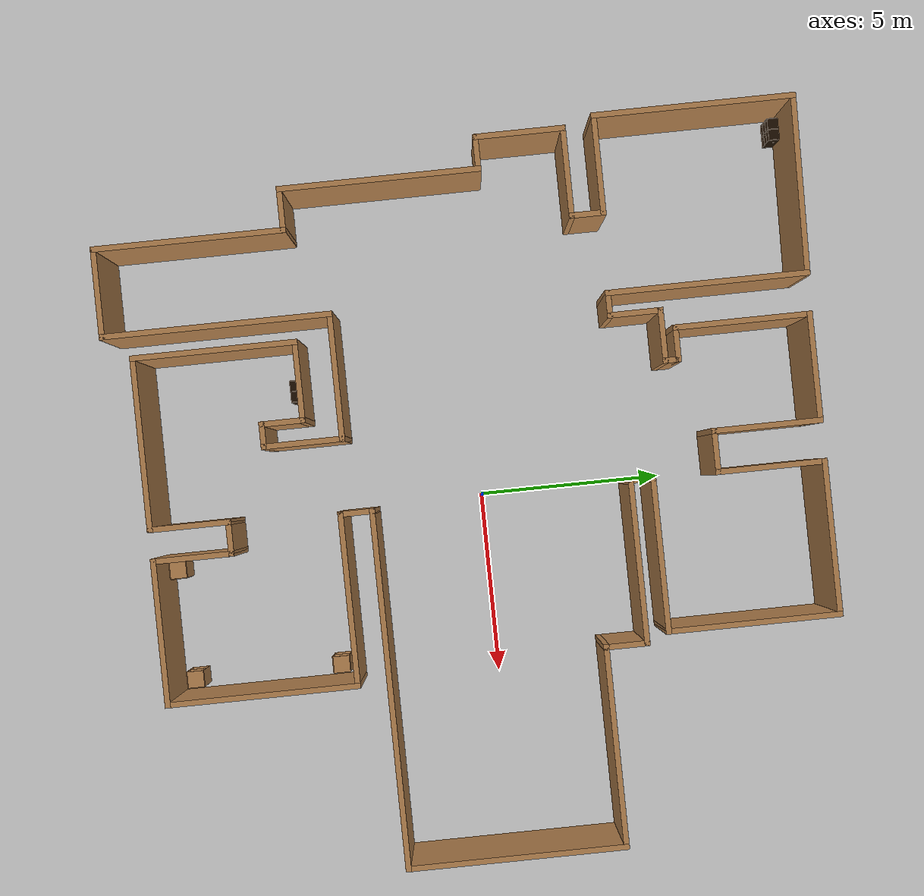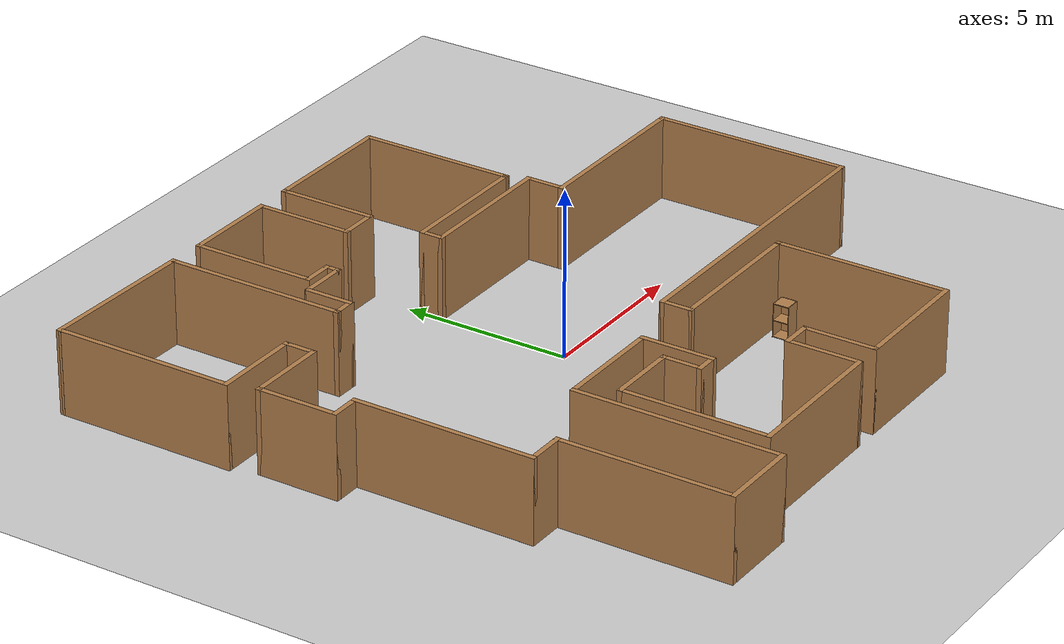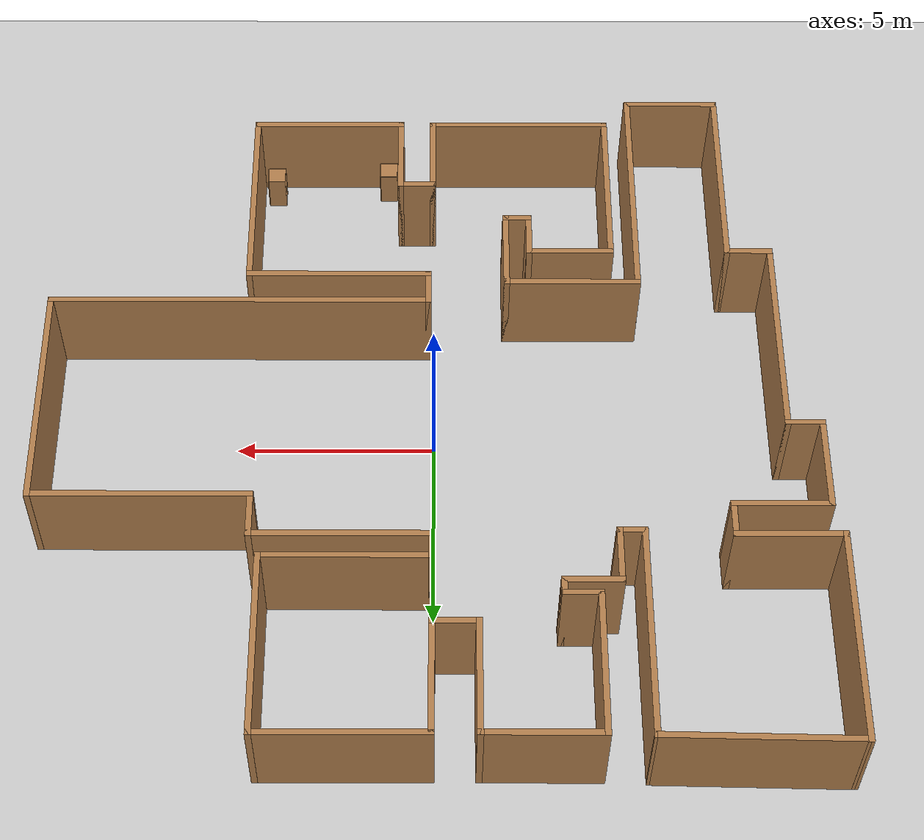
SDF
<sdf version="1.6">
 <world name="default">
  <light name="sun" type="directional">
   <pose>0 0 10 0 -0 0</pose>
   <diffuse>0.8 0.8 0.8 1</diffuse>
   <specular>0.2 0.2 0.2 1</specular>
   <attenuation>
    <range>1000</range>
    <constant>0.9</constant>
    <linear>0.01</linear>
    <quadratic>0.001</quadratic>
   </attenuation>
   <direction>-0.5 0.1 -0.9</direction>
  </light>
  <model name="ground_plane">
   <static>1</static>
   <link name="link">
    <collision name="collision">
     <geometry><plane><normal>0 0 1</normal><size>100 100</size></plane></geometry>
     <surface>
      <contact><collide_bitmask>65535</collide_bitmask></contact>
      <friction><ode><mu>100</mu><mu2>50</mu2></ode></friction>
     </surface>
    </collision>
    <visual name="visual">
     <cast_shadows>0</cast_shadows>
     <geometry><plane><normal>0 0 1</normal><size>100 100</size></plane></geometry>
     <material>
      <script><uri>file://media/materials/scripts/gazebo.material</uri><name>Gazebo/Grey</name></script>
     </material>
    </visual>
   </link>
  </model>
  <gravity>0 0 -9.8</gravity>
  <magnetic_field>6e-06 2.3e-05 -4.2e-05</magnetic_field>
  <atmosphere type="adiabatic"/>
  <physics name="default_physics" default="0" type="ode">
   <max_step_size>0.001</max_step_size>
   <real_time_factor>1</real_time_factor>
   <real_time_update_rate>1000</real_time_update_rate>
  </physics>
  <scene><ambient>0.4 0.4 0.4 1</ambient><background>0.7 0.7 0.7 1</background><shadows>1</shadows></scene>
  <audio><device>default</device></audio>
  <spherical_coordinates>
   <surface_model>EARTH_WGS84</surface_model>
   <latitude_deg>0</latitude_deg>
   <longitude_deg>0</longitude_deg>
   <elevation>0</elevation>
   <heading_deg>0</heading_deg>
  </spherical_coordinates>
  <model name="map_109">
   <pose>-0.011247 -0.17494 0 0 -0 0</pose>
   <link name="Wall_10">
    <collision name="Wall_10_Collision">
     <geometry><box><size>2.5 0.15 2.5</size></box></geometry>
     <pose>0 0 1.25 0 -0 0</pose>
    </collision>
    <visual name="Wall_10_Visual">
     <pose>0 0 1.25 0 -0 0</pose>
     <geometry><box><size>2.5 0.15 2.5</size></box></geometry>
     <material>
      <script><uri>file://media/materials/scripts/gazebo.material</uri><name>Gazebo/Wood</name></script>
      <ambient>1 1 1 1</ambient>
     </material>
     <meta><layer>0</layer></meta>
    </visual>
    <pose>-9.49922 2.12422 0 0 -0 -1.5708</pose>
   </link>
   <link name="Wall_11">
    <collision name="Wall_11_Collision">
     <geometry><box><size>1 0.15 2.5</size></box></geometry>
     <pose>0 0 1.25 0 -0 0</pose>
    </collision>
    <visual name="Wall_11_Visual">
     <pose>0 0 1.25 0 -0 0</pose>
     <geometry><box><size>1 0.15 2.5</size></box></geometry>
     <material>
      <script><uri>file://media/materials/scripts/gazebo.material</uri><name>Gazebo/Wood</name></script>
      <ambient>1 1 1 1</ambient>
     </material>
     <meta><layer>0</layer></meta>
    </visual>
    <pose>-9.07422 0.949219 0 0 -0 0</pose>
   </link>
   <link name="Wall_12">
    <collision name="Wall_12_Collision">
     <geometry><box><size>5.5 0.15 2.5</size></box></geometry>
     <pose>0 0 1.25 0 -0 0</pose>
    </collision>
    <visual name="Wall_12_Visual">
     <pose>0 0 1.25 0 -0 0</pose>
     <geometry><box><size>5.5 0.15 2.5</size></box></geometry>
     <material>
      <script><uri>file://media/materials/scripts/gazebo.material</uri><name>Gazebo/Wood</name></script>
      <ambient>1 1 1 1</ambient>
     </material>
     <meta><layer>0</layer></meta>
    </visual>
    <pose>-8.64922 -1.72578 0 0 -0 -1.5708</pose>
   </link>
   <link name="Wall_13">
    <collision name="Wall_13_Collision">
     <geometry><box><size>1.25 0.15 2.5</size></box></geometry>
     <pose>0 0 1.25 0 -0 0</pose>
    </collision>
    <visual name="Wall_13_Visual">
     <pose>0 0 1.25 0 -0 0</pose>
     <geometry><box><size>1.25 0.15 2.5</size></box></geometry>
     <material>
      <script><uri>file://media/materials/scripts/gazebo.material</uri><name>Gazebo/Wood</name></script>
      <ambient>1 1 1 1</ambient>
     </material>
     <meta><layer>0</layer></meta>
    </visual>
    <pose>-8.09922 -4.40078 0 0 -0 0</pose>
   </link>
   <link name="Wall_14">
    <collision name="Wall_14_Collision">
     <geometry><box><size>5.25 0.15 2.5</size></box></geometry>
     <pose>0 0 1.25 0 -0 0</pose>
    </collision>
    <visual name="Wall_14_Visual">
     <pose>0 0 1.25 0 -0 0</pose>
     <geometry><box><size>5.25 0.15 2.5</size></box></geometry>
     <material>
      <script><uri>file://media/materials/scripts/gazebo.material</uri><name>Gazebo/Wood</name></script>
      <ambient>1 1 1 1</ambient>
     </material>
     <meta><layer>0</layer></meta>
    </visual>
    <pose>-7.54922 -6.95078 0 0 -0 -1.5708</pose>
   </link>
   <link name="Wall_15">
    <collision name="Wall_15_Collision">
     <geometry><box><size>2.5 0.15 2.5</size></box></geometry>
     <pose>0 0 1.25 0 -0 0</pose>
    </collision>
    <visual name="Wall_15_Visual">
     <pose>0 0 1.25 0 -0 0</pose>
     <geometry><box><size>2.5 0.15 2.5</size></box></geometry>
     <material>
      <script><uri>file://media/materials/scripts/gazebo.material</uri><name>Gazebo/Wood</name></script>
      <ambient>1 1 1 1</ambient>
     </material>
     <meta><layer>0</layer></meta>
    </visual>
    <pose>-6.37422 -9.50078 0 0 -0 0</pose>
   </link>
   <link name="Wall_18">
    <collision name="Wall_18_Collision">
     <geometry><box><size>6.25 0.15 2.5</size></box></geometry>
     <pose>0 0 1.25 0 -0 0</pose>
    </collision>
    <visual name="Wall_18_Visual">
     <pose>0 0 1.25 0 -0 0</pose>
     <geometry><box><size>6.25 0.15 2.5</size></box></geometry>
     <material>
      <script><uri>file://media/materials/scripts/gazebo.material</uri><name>Gazebo/Wood</name></script>
      <ambient>1 1 1 1</ambient>
     </material>
     <meta><layer>0</layer></meta>
    </visual>
    <pose>-5.19922 -6.45078 0 0 -0 1.5708</pose>
   </link>
   <link name="Wall_21">
    <collision name="Wall_21_Collision">
     <geometry><box><size>3.5 0.15 2.5</size></box></geometry>
     <pose>0 0 1.25 0 -0 0</pose>
    </collision>
    <visual name="Wall_21_Visual">
     <pose>0 0 1.25 0 -0 0</pose>
     <geometry><box><size>3.5 0.15 2.5</size></box></geometry>
     <material>
      <script><uri>file://media/materials/scripts/gazebo.material</uri><name>Gazebo/Wood</name></script>
      <ambient>1 1 1 1</ambient>
     </material>
     <meta><layer>0</layer></meta>
    </visual>
    <pose>-3.52422 -3.40078 0 0 -0 0</pose>
   </link>
   <link name="Wall_22">
    <collision name="Wall_22_Collision">
     <geometry><box><size>2.25 0.15 2.5</size></box></geometry>
     <pose>0 0 1.25 0 -0 0</pose>
    </collision>
    <visual name="Wall_22_Visual">
     <pose>0 0 1.25 0 -0 0</pose>
     <geometry><box><size>2.25 0.15 2.5</size></box></geometry>
     <material>
      <script><uri>file://media/materials/scripts/gazebo.material</uri><name>Gazebo/Wood</name></script>
      <ambient>1 1 1 1</ambient>
     </material>
     <meta><layer>0</layer></meta>
    </visual>
    <pose>-1.84922 -4.45078 0 0 -0 -1.5708</pose>
   </link>
   <link name="Wall_23">
    <collision name="Wall_23_Collision">
     <geometry><box><size>0.75 0.15 2.5</size></box></geometry>
     <pose>0 0 1.25 0 -0 0</pose>
    </collision>
    <visual name="Wall_23_Visual">
     <pose>0 0 1.25 0 -0 0</pose>
     <geometry><box><size>0.75 0.15 2.5</size></box></geometry>
     <material>
      <script><uri>file://media/materials/scripts/gazebo.material</uri><name>Gazebo/Wood</name></script>
      <ambient>1 1 1 1</ambient>
     </material>
     <meta><layer>0</layer></meta>
    </visual>
    <pose>-2.14922 -5.50078 0 0 -0 3.14159</pose>
   </link>
   <link name="Wall_24">
    <collision name="Wall_24_Collision">
     <geometry><box><size>1.25 0.15 2.5</size></box></geometry>
     <pose>0 0 1.25 0 -0 0</pose>
    </collision>
    <visual name="Wall_24_Visual">
     <pose>0 0 1.25 0 -0 0</pose>
     <geometry><box><size>1.25 0.15 2.5</size></box></geometry>
     <material>
      <script><uri>file://media/materials/scripts/gazebo.material</uri><name>Gazebo/Wood</name></script>
      <ambient>1 1 1 1</ambient>
     </material>
     <meta><layer>0</layer></meta>
    </visual>
    <pose>-2.44922 -4.95078 0 0 -0 1.5708</pose>
   </link>
   <link name="Wall_25">
    <collision name="Wall_25_Collision">
     <geometry><box><size>2.25 0.15 2.5</size></box></geometry>
     <pose>0 0 1.25 0 -0 0</pose>
    </collision>
    <visual name="Wall_25_Visual">
     <pose>0 0 1.25 0 -0 0</pose>
     <geometry><box><size>2.25 0.15 2.5</size></box></geometry>
     <material>
      <script><uri>file://media/materials/scripts/gazebo.material</uri><name>Gazebo/Wood</name></script>
      <ambient>1 1 1 1</ambient>
     </material>
     <meta><layer>0</layer></meta>
    </visual>
    <pose>-3.49922 -4.40078 0 0 -0 3.14159</pose>
   </link>
   <link name="Wall_26">
    <collision name="Wall_26_Collision">
     <geometry><box><size>4.5 0.15 2.5</size></box></geometry>
     <pose>0 0 1.25 0 -0 0</pose>
    </collision>
    <visual name="Wall_26_Visual">
     <pose>0 0 1.25 0 -0 0</pose>
     <geometry><box><size>4.5 0.15 2.5</size></box></geometry>
     <material>
      <script><uri>file://media/materials/scripts/gazebo.material</uri><name>Gazebo/Wood</name></script>
      <ambient>1 1 1 1</ambient>
     </material>
     <meta><layer>0</layer></meta>
    </visual>
    <pose>-4.54922 -6.57578 0 0 -0 -1.5708</pose>
   </link>
   <link name="Wall_27">
    <collision name="Wall_27_Collision">
     <geometry><box><size>4.75 0.15 2.5</size></box></geometry>
     <pose>0 0 1.25 0 -0 0</pose>
    </collision>
    <visual name="Wall_27_Visual">
     <pose>0 0 1.25 0 -0 0</pose>
     <geometry><box><size>4.75 0.15 2.5</size></box></geometry>
     <material>
      <script><uri>file://media/materials/scripts/gazebo.material</uri><name>Gazebo/Wood</name></script>
      <ambient>1 1 1 1</ambient>
     </material>
     <meta><layer>0</layer></meta>
    </visual>
    <pose>-2.24922 -8.75078 0 0 -0 0</pose>
   </link>
   <link name="Wall_28">
    <collision name="Wall_28_Collision">
     <geometry><box><size>2.25 0.15 2.5</size></box></geometry>
     <pose>0 0 1.25 0 -0 0</pose>
    </collision>
    <visual name="Wall_28_Visual">
     <pose>0 0 1.25 0 -0 0</pose>
     <geometry><box><size>2.25 0.15 2.5</size></box></geometry>
     <material>
      <script><uri>file://media/materials/scripts/gazebo.material</uri><name>Gazebo/Wood</name></script>
      <ambient>1 1 1 1</ambient>
     </material>
     <meta><layer>0</layer></meta>
    </visual>
    <pose>0.05078 -7.70078 0 0 -0 1.5708</pose>
   </link>
   <link name="Wall_29">
    <collision name="Wall_29_Collision">
     <geometry><box><size>1 0.15 2.5</size></box></geometry>
     <pose>0 0 1.25 0 -0 0</pose>
    </collision>
    <visual name="Wall_29_Visual">
     <pose>0 0 1.25 0 -0 0</pose>
     <geometry><box><size>1 0.15 2.5</size></box></geometry>
     <material>
      <script><uri>file://media/materials/scripts/gazebo.material</uri><name>Gazebo/Wood</name></script>
      <ambient>1 1 1 1</ambient>
     </material>
     <meta><layer>0</layer></meta>
    </visual>
    <pose>0.47578 -6.65078 0 0 -0 0</pose>
   </link>
   <link name="Wall_30">
    <collision name="Wall_30_Collision">
     <geometry><box><size>2.25 0.15 2.5</size></box></geometry>
     <pose>0 0 1.25 0 -0 0</pose>
    </collision>
    <visual name="Wall_30_Visual">
     <pose>0 0 1.25 0 -0 0</pose>
     <geometry><box><size>2.25 0.15 2.5</size></box></geometry>
     <material>
      <script><uri>file://media/materials/scripts/gazebo.material</uri><name>Gazebo/Wood</name></script>
      <ambient>1 1 1 1</ambient>
     </material>
     <meta><layer>0</layer></meta>
    </visual>
    <pose>0.90078 -7.70078 0 0 -0 -1.5708</pose>
   </link>
   <link name="Wall_31">
    <collision name="Wall_31_Collision">
     <geometry><box><size>4 0.15 2.5</size></box></geometry>
     <pose>0 0 1.25 0 -0 0</pose>
    </collision>
    <visual name="Wall_31_Visual">
     <pose>0 0 1.25 0 -0 0</pose>
     <geometry><box><size>4 0.15 2.5</size></box></geometry>
     <material>
      <script><uri>file://media/materials/scripts/gazebo.material</uri><name>Gazebo/Wood</name></script>
      <ambient>1 1 1 1</ambient>
     </material>
     <meta><layer>0</layer></meta>
    </visual>
    <pose>2.82578 -8.75078 0 0 -0 0</pose>
   </link>
   <link name="Wall_32">
    <collision name="Wall_32_Collision">
     <geometry><box><size>5.25 0.15 2.5</size></box></geometry>
     <pose>0 0 1.25 0 -0 0</pose>
    </collision>
    <visual name="Wall_32_Visual">
     <pose>0 0 1.25 0 -0 0</pose>
     <geometry><box><size>5.25 0.15 2.5</size></box></geometry>
     <material>
      <script><uri>file://media/materials/scripts/gazebo.material</uri><name>Gazebo/Wood</name></script>
      <ambient>1 1 1 1</ambient>
     </material>
     <meta><layer>0</layer></meta>
    </visual>
    <pose>4.75078 -6.20078 0 0 -0 1.5708</pose>
   </link>
   <link name="Wall_33">
    <collision name="Wall_33_Collision">
     <geometry><box><size>4.75 0.15 2.5</size></box></geometry>
     <pose>0 0 1.25 0 -0 0</pose>
    </collision>
    <visual name="Wall_33_Visual">
     <pose>0 0 1.25 0 -0 0</pose>
     <geometry><box><size>4.75 0.15 2.5</size></box></geometry>
     <material>
      <script><uri>file://media/materials/scripts/gazebo.material</uri><name>Gazebo/Wood</name></script>
      <ambient>1 1 1 1</ambient>
     </material>
     <meta><layer>0</layer></meta>
    </visual>
    <pose>2.45078 -3.65078 0 0 -0 3.14159</pose>
   </link>
   <link name="Wall_34">
    <collision name="Wall_34_Collision">
     <geometry><box><size>1 0.15 2.5</size></box></geometry>
     <pose>0 0 1.25 0 -0 0</pose>
    </collision>
    <visual name="Wall_34_Visual">
     <pose>0 0 1.25 0 -0 0</pose>
     <geometry><box><size>1 0.15 2.5</size></box></geometry>
     <material>
      <script><uri>file://media/materials/scripts/gazebo.material</uri><name>Gazebo/Wood</name></script>
      <ambient>1 1 1 1</ambient>
     </material>
     <meta><layer>0</layer></meta>
    </visual>
    <pose>0.15078 -3.22578 0 0 -0 1.5708</pose>
   </link>
   <link name="Wall_35">
    <collision name="Wall_35_Collision">
     <geometry><box><size>9.75 0.15 2.5</size></box></geometry>
     <pose>0 0 1.25 0 -0 0</pose>
    </collision>
    <visual name="Wall_35_Visual">
     <pose>0 0 1.25 0 -0 0</pose>
     <geometry><box><size>9.75 0.15 2.5</size></box></geometry>
     <material>
      <script><uri>file://media/materials/scripts/gazebo.material</uri><name>Gazebo/Wood</name></script>
      <ambient>1 1 1 1</ambient>
     </material>
     <meta><layer>0</layer></meta>
    </visual>
    <pose>4.95078 -2.80078 0 0 -0 0</pose>
   </link>
   <link name="Wall_37">
    <collision name="Wall_37_Collision">
     <geometry><box><size>6 0.15 2.5</size></box></geometry>
     <pose>0 0 1.25 0 -0 0</pose>
    </collision>
    <visual name="Wall_37_Visual">
     <pose>0 0 1.25 0 -0 0</pose>
     <geometry><box><size>6 0.15 2.5</size></box></geometry>
     <material>
      <script><uri>file://media/materials/scripts/gazebo.material</uri><name>Gazebo/Wood</name></script>
      <ambient>1 1 1 1</ambient>
     </material>
     <meta><layer>0</layer></meta>
    </visual>
    <pose>9.75078 0.124219 0 0 -0 1.5708</pose>
   </link>
   <link name="Wall_41">
    <collision name="Wall_41_Collision">
     <geometry><box><size>5.5 0.15 2.5</size></box></geometry>
     <pose>0 0 1.25 0 -0 0</pose>
    </collision>
    <visual name="Wall_41_Visual">
     <pose>0 0 1.25 0 -0 0</pose>
     <geometry><box><size>5.5 0.15 2.5</size></box></geometry>
     <material>
      <script><uri>file://media/materials/scripts/gazebo.material</uri><name>Gazebo/Wood</name></script>
      <ambient>1 1 1 1</ambient>
     </material>
     <meta><layer>0</layer></meta>
    </visual>
    <pose>7.07578 3.04922 0 0 -0 3.14159</pose>
   </link>
   <link name="Wall_42">
    <collision name="Wall_42_Collision">
     <geometry><box><size>1.25 0.15 2.5</size></box></geometry>
     <pose>0 0 1.25 0 -0 0</pose>
    </collision>
    <visual name="Wall_42_Visual">
     <pose>0 0 1.25 0 -0 0</pose>
     <geometry><box><size>1.25 0.15 2.5</size></box></geometry>
     <material>
      <script><uri>file://media/materials/scripts/gazebo.material</uri><name>Gazebo/Wood</name></script>
      <ambient>1 1 1 1</ambient>
     </material>
     <meta><layer>0</layer></meta>
    </visual>
    <pose>4.40078 3.59922 0 0 -0 1.5708</pose>
   </link>
   <link name="Wall_43">
    <collision name="Wall_43_Collision">
     <geometry><box><size>4.5 0.15 2.5</size></box></geometry>
     <pose>0 0 1.25 0 -0 0</pose>
    </collision>
    <visual name="Wall_43_Visual">
     <pose>0 0 1.25 0 -0 0</pose>
     <geometry><box><size>4.5 0.15 2.5</size></box></geometry>
     <material>
      <script><uri>file://media/materials/scripts/gazebo.material</uri><name>Gazebo/Wood</name></script>
      <ambient>1 1 1 1</ambient>
     </material>
     <meta><layer>0</layer></meta>
    </visual>
    <pose>2.22578 4.14922 0 0 -0 3.14159</pose>
   </link>
   <link name="Wall_44">
    <collision name="Wall_44_Collision">
     <geometry><box><size>0.75 0.15 2.5</size></box></geometry>
     <pose>0 0 1.25 0 -0 0</pose>
    </collision>
    <visual name="Wall_44_Visual">
     <pose>0 0 1.25 0 -0 0</pose>
     <geometry><box><size>0.75 0.15 2.5</size></box></geometry>
     <material>
      <script><uri>file://media/materials/scripts/gazebo.material</uri><name>Gazebo/Wood</name></script>
      <ambient>1 1 1 1</ambient>
     </material>
     <meta><layer>0</layer></meta>
    </visual>
    <pose>0.05078 4.44922 0 0 -0 1.5708</pose>
   </link>
   <link name="Wall_45">
    <collision name="Wall_45_Collision">
     <geometry><box><size>4.25 0.15 2.5</size></box></geometry>
     <pose>0 0 1.25 0 -0 0</pose>
    </collision>
    <visual name="Wall_45_Visual">
     <pose>0 0 1.25 0 -0 0</pose>
     <geometry><box><size>4.25 0.15 2.5</size></box></geometry>
     <material>
      <script><uri>file://media/materials/scripts/gazebo.material</uri><name>Gazebo/Wood</name></script>
      <ambient>1 1 1 1</ambient>
     </material>
     <meta><layer>0</layer></meta>
    </visual>
    <pose>2.10078 4.74922 0 0 -0 0</pose>
   </link>
   <link name="Wall_46">
    <collision name="Wall_46_Collision">
     <geometry><box><size>4.75 0.15 2.5</size></box></geometry>
     <pose>0 0 1.25 0 -0 0</pose>
    </collision>
    <visual name="Wall_46_Visual">
     <pose>0 0 1.25 0 -0 0</pose>
     <geometry><box><size>4.75 0.15 2.5</size></box></geometry>
     <material>
      <script><uri>file://media/materials/scripts/gazebo.material</uri><name>Gazebo/Wood</name></script>
      <ambient>1 1 1 1</ambient>
     </material>
     <meta><layer>0</layer></meta>
    </visual>
    <pose>4.15078 7.04922 0 0 -0 1.5708</pose>
   </link>
   <link name="Wall_47">
    <collision name="Wall_47_Collision">
     <geometry><box><size>4.25 0.15 2.5</size></box></geometry>
     <pose>0 0 1.25 0 -0 0</pose>
    </collision>
    <visual name="Wall_47_Visual">
     <pose>0 0 1.25 0 -0 0</pose>
     <geometry><box><size>4.25 0.15 2.5</size></box></geometry>
     <material>
      <script><uri>file://media/materials/scripts/gazebo.material</uri><name>Gazebo/Wood</name></script>
      <ambient>1 1 1 1</ambient>
     </material>
     <meta><layer>0</layer></meta>
    </visual>
    <pose>2.10078 9.34922 0 0 -0 3.14159</pose>
   </link>
   <link name="Wall_48">
    <collision name="Wall_48_Collision">
     <geometry><box><size>3 0.15 2.5</size></box></geometry>
     <pose>0 0 1.25 0 -0 0</pose>
    </collision>
    <visual name="Wall_48_Visual">
     <pose>0 0 1.25 0 -0 0</pose>
     <geometry><box><size>3 0.15 2.5</size></box></geometry>
     <material>
      <script><uri>file://media/materials/scripts/gazebo.material</uri><name>Gazebo/Wood</name></script>
      <ambient>1 1 1 1</ambient>
     </material>
     <meta><layer>0</layer></meta>
    </visual>
    <pose>0.05078 7.92422 0 0 -0 -1.5708</pose>
   </link>
   <link name="Wall_51">
    <collision name="Wall_51_Collision">
     <geometry><box><size>1.25 0.15 2.5</size></box></geometry>
     <pose>0 0 1.25 0 -0 0</pose>
    </collision>
    <visual name="Wall_51_Visual">
     <pose>0 0 1.25 0 -0 0</pose>
     <geometry><box><size>1.25 0.15 2.5</size></box></geometry>
     <material>
      <script><uri>file://media/materials/scripts/gazebo.material</uri><name>Gazebo/Wood</name></script>
      <ambient>1 1 1 1</ambient>
     </material>
     <meta><layer>0</layer></meta>
    </visual>
    <pose>-0.49922 6.49922 0 0 -0 3.14159</pose>
   </link>
   <link name="Wall_52">
    <collision name="Wall_52_Collision">
     <geometry><box><size>3 0.15 2.5</size></box></geometry>
     <pose>0 0 1.25 0 -0 0</pose>
    </collision>
    <visual name="Wall_52_Visual">
     <pose>0 0 1.25 0 -0 0</pose>
     <geometry><box><size>3 0.15 2.5</size></box></geometry>
     <material>
      <script><uri>file://media/materials/scripts/gazebo.material</uri><name>Gazebo/Wood</name></script>
      <ambient>1 1 1 1</ambient>
     </material>
     <meta><layer>0</layer></meta>
    </visual>
    <pose>-1.04922 7.92422 0 0 -0 1.5708</pose>
   </link>
   <link name="Wall_53">
    <collision name="Wall_53_Collision">
     <geometry><box><size>3 0.15 2.5</size></box></geometry>
     <pose>0 0 1.25 0 -0 0</pose>
    </collision>
    <visual name="Wall_53_Visual">
     <pose>0 0 1.25 0 -0 0</pose>
     <geometry><box><size>3 0.15 2.5</size></box></geometry>
     <material>
      <script><uri>file://media/materials/scripts/gazebo.material</uri><name>Gazebo/Wood</name></script>
      <ambient>1 1 1 1</ambient>
     </material>
     <meta><layer>0</layer></meta>
    </visual>
    <pose>-2.47422 9.34922 0 0 -0 3.14159</pose>
   </link>
   <link name="Wall_54">
    <collision name="Wall_54_Collision">
     <geometry><box><size>3.75 0.15 2.5</size></box></geometry>
     <pose>0 0 1.25 0 -0 0</pose>
    </collision>
    <visual name="Wall_54_Visual">
     <pose>0 0 1.25 0 -0 0</pose>
     <geometry><box><size>3.75 0.15 2.5</size></box></geometry>
     <material>
      <script><uri>file://media/materials/scripts/gazebo.material</uri><name>Gazebo/Wood</name></script>
      <ambient>1 1 1 1</ambient>
     </material>
     <meta><layer>0</layer></meta>
    </visual>
    <pose>-3.89922 7.54922 0 0 -0 -1.5708</pose>
   </link>
   <link name="Wall_55">
    <collision name="Wall_55_Collision">
     <geometry><box><size>1 0.15 2.5</size></box></geometry>
     <pose>0 0 1.25 0 -0 0</pose>
    </collision>
    <visual name="Wall_55_Visual">
     <pose>0 0 1.25 0 -0 0</pose>
     <geometry><box><size>1 0.15 2.5</size></box></geometry>
     <material>
      <script><uri>file://media/materials/scripts/gazebo.material</uri><name>Gazebo/Wood</name></script>
      <ambient>1 1 1 1</ambient>
     </material>
     <meta><layer>0</layer></meta>
    </visual>
    <pose>-3.47422 5.74922 0 0 -0 0</pose>
   </link>
   <link name="Wall_56">
    <collision name="Wall_56_Collision">
     <geometry><box><size>0.5 0.15 2.5</size></box></geometry>
     <pose>0 0 1.25 0 -0 0</pose>
    </collision>
    <visual name="Wall_56_Visual">
     <pose>0 0 1.25 0 -0 0</pose>
     <geometry><box><size>0.5 0.15 2.5</size></box></geometry>
     <material>
      <script><uri>file://media/materials/scripts/gazebo.material</uri><name>Gazebo/Wood</name></script>
      <ambient>1 1 1 1</ambient>
     </material>
     <meta><layer>0</layer></meta>
    </visual>
    <pose>-3.04922 5.57422 0 0 -0 -1.5708</pose>
   </link>
   <link name="Wall_57">
    <collision name="Wall_57_Collision">
     <geometry><box><size>1.5 0.15 2.5</size></box></geometry>
     <pose>0 0 1.25 0 -0 0</pose>
    </collision>
    <visual name="Wall_57_Visual">
     <pose>0 0 1.25 0 -0 0</pose>
     <geometry><box><size>1.5 0.15 2.5</size></box></geometry>
     <material>
      <script><uri>file://media/materials/scripts/gazebo.material</uri><name>Gazebo/Wood</name></script>
      <ambient>1 1 1 1</ambient>
     </material>
     <meta><layer>0</layer></meta>
    </visual>
    <pose>-3.72422 5.39922 0 0 -0 3.14159</pose>
   </link>
   <link name="Wall_58">
    <collision name="Wall_58_Collision">
     <geometry><box><size>1.5 0.15 2.5</size></box></geometry>
     <pose>0 0 1.25 0 -0 0</pose>
    </collision>
    <visual name="Wall_58_Visual">
     <pose>0 0 1.25 0 -0 0</pose>
     <geometry><box><size>1.5 0.15 2.5</size></box></geometry>
     <material>
      <script><uri>file://media/materials/scripts/gazebo.material</uri><name>Gazebo/Wood</name></script>
      <ambient>1 1 1 1</ambient>
     </material>
     <meta><layer>0</layer></meta>
    </visual>
    <pose>-4.39922 4.72422 0 0 -0 -1.5708</pose>
   </link>
   <link name="Wall_59">
    <collision name="Wall_59_Collision">
     <geometry><box><size>0.75 0.15 2.5</size></box></geometry>
     <pose>0 0 1.25 0 -0 0</pose>
    </collision>
    <visual name="Wall_59_Visual">
     <pose>0 0 1.25 0 -0 0</pose>
     <geometry><box><size>0.75 0.15 2.5</size></box></geometry>
     <material>
      <script><uri>file://media/materials/scripts/gazebo.material</uri><name>Gazebo/Wood</name></script>
      <ambient>1 1 1 1</ambient>
     </material>
     <meta><layer>0</layer></meta>
    </visual>
    <pose>-4.69922 4.04922 0 0 -0 3.14159</pose>
   </link>
   <link name="Wall_6">
    <collision name="Wall_6_Collision">
     <geometry><box><size>5.5 0.15 2.5</size></box></geometry>
     <pose>0 0 1.25 0 -0 0</pose>
    </collision>
    <visual name="Wall_6_Visual">
     <pose>0 0 1.25 0 -0 0</pose>
     <geometry><box><size>5.5 0.15 2.5</size></box></geometry>
     <material>
      <script><uri>file://media/materials/scripts/gazebo.material</uri><name>Gazebo/Wood</name></script>
      <ambient>1 1 1 1</ambient>
     </material>
     <meta><layer>0</layer></meta>
    </visual>
    <pose>-9.74922 6.82422 0 0 -0 -1.5708</pose>
   </link>
   <link name="Wall_60">
    <collision name="Wall_60_Collision">
     <geometry><box><size>5.5 0.15 2.5</size></box></geometry>
     <pose>0 0 1.25 0 -0 0</pose>
    </collision>
    <visual name="Wall_60_Visual">
     <pose>0 0 1.25 0 -0 0</pose>
     <geometry><box><size>5.5 0.15 2.5</size></box></geometry>
     <material>
      <script><uri>file://media/materials/scripts/gazebo.material</uri><name>Gazebo/Wood</name></script>
      <ambient>1 1 1 1</ambient>
     </material>
     <meta><layer>0</layer></meta>
    </visual>
    <pose>-4.99922 6.72422 0 0 -0 1.5708</pose>
   </link>
   <link name="Wall_62">
    <collision name="Wall_62_Collision">
     <geometry><box><size>4.90105 0.15 2.5</size></box></geometry>
     <pose>0 0 1.25 0 -0 0</pose>
    </collision>
    <visual name="Wall_62_Visual">
     <pose>0 0 1.25 0 -0 0</pose>
     <geometry><box><size>4.90105 0.15 2.5</size></box></geometry>
     <material>
      <script><uri>file://media/materials/scripts/gazebo.material</uri><name>Gazebo/Wood</name></script>
      <ambient>1 1 1 1</ambient>
     </material>
     <meta><layer>0</layer></meta>
    </visual>
    <pose>-7.37422 9.44922 0 0 -0 -0.02105</pose>
   </link>
   <link name="Wall_7">
    <collision name="Wall_7_Collision">
     <geometry><box><size>2.75 0.15 2.5</size></box></geometry>
     <pose>0 0 1.25 0 -0 0</pose>
    </collision>
    <visual name="Wall_7_Visual">
     <pose>0 0 1.25 0 -0 0</pose>
     <geometry><box><size>2.75 0.15 2.5</size></box></geometry>
     <material>
      <script><uri>file://media/materials/scripts/gazebo.material</uri><name>Gazebo/Wood</name></script>
      <ambient>1 1 1 1</ambient>
     </material>
     <meta><layer>0</layer></meta>
    </visual>
    <pose>-8.44922 4.14922 0 0 -0 0</pose>
   </link>
   <link name="Wall_8">
    <collision name="Wall_8_Collision">
     <geometry><box><size>1 0.15 2.5</size></box></geometry>
     <pose>0 0 1.25 0 -0 0</pose>
    </collision>
    <visual name="Wall_8_Visual">
     <pose>0 0 1.25 0 -0 0</pose>
     <geometry><box><size>1 0.15 2.5</size></box></geometry>
     <material>
      <script><uri>file://media/materials/scripts/gazebo.material</uri><name>Gazebo/Wood</name></script>
      <ambient>1 1 1 1</ambient>
     </material>
     <meta><layer>0</layer></meta>
    </visual>
    <pose>-7.14922 3.72422 0 0 -0 -1.5708</pose>
   </link>
   <link name="Wall_9">
    <collision name="Wall_9_Collision">
     <geometry><box><size>2.5 0.15 2.5</size></box></geometry>
     <pose>0 0 1.25 0 -0 0</pose>
    </collision>
    <visual name="Wall_9_Visual">
     <pose>0 0 1.25 0 -0 0</pose>
     <geometry><box><size>2.5 0.15 2.5</size></box></geometry>
     <material>
      <script><uri>file://media/materials/scripts/gazebo.material</uri><name>Gazebo/Wood</name></script>
      <ambient>1 1 1 1</ambient>
     </material>
     <meta><layer>0</layer></meta>
    </visual>
    <pose>-8.32422 3.29922 0 0 -0 3.14159</pose>
   </link>
   <static>1</static>
  </model>
  <model name="6_Cube_StorageE">
   <link name="Wall_0">
    <pose>0 0 0.01 0 -0 0</pose>
    <inertial>
     <mass>1.6201</mass>
     <inertia><ixx>0.0119</ixx><iyy>0.0631</iyy><izz>0.0513</izz><ixy>0</ixy><ixz>0</ixz><iyz>0</iyz></inertia>
    </inertial>
    <collision name="Wall_0_Collision"><geometry><box><size>0.616 0.296 0.02</size></box></geometry></collision>
    <visual name="Wall_0_Visual">
     <geometry><box><size>0.616 0.296 0.02</size></box></geometry>
     <material>
      <script><uri>file://media/materials/scripts/gazebo.material</uri><name>Gazebo/Grey</name></script>
      <ambient>0.105882 0.0509804 0 1</ambient>
     </material>
    </visual>
   </link>
   <joint name="0_2" type="fixed">
    <pose>-0.308 0 0 0 -0 0</pose>
    <parent>Wall_2</parent>
    <child>Wall_0</child>
    <axis>
     <xyz>1 0 0</xyz>
     <use_parent_model_frame>0</use_parent_model_frame>
     <limit><lower>-1e+16</lower><upper>1e+16</upper></limit>
    </axis>
   </joint>
   <joint name="0_12" type="fixed">
    <parent>Wall_12</parent>
    <child>Wall_0</child>
    <axis>
     <xyz>0 0 1</xyz>
     <use_parent_model_frame>0</use_parent_model_frame>
     <limit><lower>-1e+16</lower><upper>1e+16</upper></limit>
    </axis>
   </joint>
   <joint name="0_4" type="fixed">
    <pose>0.308 0 0 0 -0 0</pose>
    <parent>Wall_4</parent>
    <child>Wall_0</child>
    <axis>
     <xyz>1 0 0</xyz>
     <use_parent_model_frame>0</use_parent_model_frame>
     <limit><lower>-1e+16</lower><upper>1e+16</upper></limit>
    </axis>
   </joint>
   <link name="Wall_10">
    <pose>0 0 0.61 0 -0 0</pose>
    <inertial>
     <mass>1.6201</mass>
     <inertia><ixx>0.0119</ixx><iyy>0.0631</iyy><izz>0.0513</izz><ixy>0</ixy><ixz>0</ixz><iyz>0</iyz></inertia>
    </inertial>
    <collision name="Wall_10_Collision"><geometry><box><size>0.616 0.296 0.02</size></box></geometry></collision>
    <visual name="Wall_10_Visual">
     <geometry><box><size>0.616 0.296 0.02</size></box></geometry>
     <material>
      <script><uri>file://media/materials/scripts/gazebo.material</uri><name>Gazebo/Grey</name></script>
      <ambient>0.105882 0.0509804 0 1</ambient>
     </material>
    </visual>
   </link>
   <joint name="10_2" type="fixed">
    <pose>-0.308 0 0 0 -0 0</pose>
    <parent>Wall_2</parent>
    <child>Wall_10</child>
    <axis>
     <xyz>1 0 0</xyz>
     <use_parent_model_frame>0</use_parent_model_frame>
     <limit><lower>-1e+16</lower><upper>1e+16</upper></limit>
    </axis>
   </joint>
   <joint name="10_12" type="fixed">
    <parent>Wall_12</parent>
    <child>Wall_10</child>
    <axis>
     <xyz>0 0 1</xyz>
     <use_parent_model_frame>0</use_parent_model_frame>
     <limit><lower>-1e+16</lower><upper>1e+16</upper></limit>
    </axis>
   </joint>
   <joint name="10_4" type="fixed">
    <pose>0.308 0 0 0 -0 0</pose>
    <parent>Wall_4</parent>
    <child>Wall_10</child>
    <axis>
     <xyz>1 0 0</xyz>
     <use_parent_model_frame>0</use_parent_model_frame>
     <limit><lower>-1e+16</lower><upper>1e+16</upper></limit>
    </axis>
   </joint>
   <link name="Wall_12">
    <pose>0 0 0.4575 0 -0 0</pose>
    <inertial>
     <mass>2.4065</mass>
     <inertia><ixx>0.0177</ixx><iyy>0.1855</iyy><izz>0.168</izz><ixy>0</ixy><ixz>0</ixz><iyz>0</iyz></inertia>
    </inertial>
    <collision name="Wall_12_Collision"><geometry><box><size>0.02 0.296 0.915</size></box></geometry></collision>
    <visual name="Wall_12_Visual">
     <geometry><box><size>0.02 0.296 0.915</size></box></geometry>
     <material>
      <script><uri>file://media/materials/scripts/gazebo.material</uri><name>Gazebo/Grey</name></script>
      <ambient>0.105882 0.0509804 0 1</ambient>
     </material>
    </visual>
   </link>
   <link name="Wall_2">
    <pose>-0.298 0 0.4575 0 -0 0</pose>
    <inertial>
     <mass>2.4065</mass>
     <inertia><ixx>0.0177</ixx><iyy>0.1855</iyy><izz>0.168</izz><ixy>0</ixy><ixz>0</ixz><iyz>0</iyz></inertia>
    </inertial>
    <collision name="Wall_2_Collision"><geometry><box><size>0.02 0.296 0.915</size></box></geometry></collision>
    <visual name="Wall_2_Visual">
     <geometry><box><size>0.02 0.296 0.915</size></box></geometry>
     <material>
      <script><uri>file://media/materials/scripts/gazebo.material</uri><name>Gazebo/Grey</name></script>
      <ambient>0.105882 0.0509804 0 1</ambient>
     </material>
    </visual>
   </link>
   <link name="Wall_4">
    <pose>0.298 0 0.4575 0 -0 0</pose>
    <inertial>
     <mass>2.4065</mass>
     <inertia><ixx>0.0177</ixx><iyy>0.1855</iyy><izz>0.168</izz><ixy>0</ixy><ixz>0</ixz><iyz>0</iyz></inertia>
    </inertial>
    <collision name="Wall_4_Collision"><geometry><box><size>0.02 0.296 0.915</size></box></geometry></collision>
    <visual name="Wall_4_Visual">
     <geometry><box><size>0.02 0.296 0.915</size></box></geometry>
     <material>
      <script><uri>file://media/materials/scripts/gazebo.material</uri><name>Gazebo/Grey</name></script>
      <ambient>0.105882 0.0509804 0 1</ambient>
     </material>
    </visual>
   </link>
   <link name="Wall_6">
    <pose>0 0 0.905 0 -0 0</pose>
    <inertial>
     <mass>1.6201</mass>
     <inertia><ixx>0.0119</ixx><iyy>0.0631</iyy><izz>0.0513</izz><ixy>0</ixy><ixz>0</ixz><iyz>0</iyz></inertia>
    </inertial>
    <collision name="Wall_6_Collision"><geometry><box><size>0.616 0.296 0.02</size></box></geometry></collision>
    <visual name="Wall_6_Visual">
     <geometry><box><size>0.616 0.296 0.02</size></box></geometry>
     <material>
      <script><uri>file://media/materials/scripts/gazebo.material</uri><name>Gazebo/Grey</name></script>
      <ambient>0.105882 0.0509804 0 1</ambient>
     </material>
    </visual>
   </link>
   <joint name="6_2" type="fixed">
    <pose>-0.308 0 0 0 -0 0</pose>
    <parent>Wall_2</parent>
    <child>Wall_6</child>
    <axis>
     <xyz>2 0 0</xyz>
     <use_parent_model_frame>0</use_parent_model_frame>
     <limit><lower>-1e+16</lower><upper>1e+16</upper></limit>
    </axis>
   </joint>
   <joint name="6_12" type="fixed">
    <parent>Wall_12</parent>
    <child>Wall_6</child>
    <axis>
     <xyz>0 0 1</xyz>
     <use_parent_model_frame>0</use_parent_model_frame>
     <limit><lower>-1e+16</lower><upper>1e+16</upper></limit>
    </axis>
   </joint>
   <joint name="6_4" type="fixed">
    <pose>0.308 0 0 0 -0 0</pose>
    <parent>Wall_4</parent>
    <child>Wall_6</child>
    <axis>
     <xyz>1 0 0</xyz>
     <use_parent_model_frame>0</use_parent_model_frame>
     <limit><lower>-1e+16</lower><upper>1e+16</upper></limit>
    </axis>
   </joint>
   <link name="Wall_8">
    <pose>0 0 0.305 0 -0 0</pose>
    <inertial>
     <mass>1.6201</mass>
     <inertia><ixx>0.0119</ixx><iyy>0.0631</iyy><izz>0.0513</izz><ixy>0</ixy><ixz>0</ixz><iyz>0</iyz></inertia>
    </inertial>
    <collision name="Wall_8_Collision"><geometry><box><size>0.616 0.296 0.02</size></box></geometry></collision>
    <visual name="Wall_8_Visual">
     <geometry><box><size>0.616 0.296 0.02</size></box></geometry>
     <material>
      <script><uri>file://media/materials/scripts/gazebo.material</uri><name>Gazebo/Grey</name></script>
      <ambient>0.105882 0.0509804 0 1</ambient>
     </material>
    </visual>
   </link>
   <joint name="8_2" type="fixed">
    <pose>-0.308 0 0 0 -0 0</pose>
    <parent>Wall_2</parent>
    <child>Wall_8</child>
    <axis>
     <xyz>1 0 0</xyz>
     <use_parent_model_frame>0</use_parent_model_frame>
     <limit><lower>-1e+16</lower><upper>1e+16</upper></limit>
    </axis>
   </joint>
   <joint name="8_12" type="fixed">
    <parent>Wall_12</parent>
    <child>Wall_8</child>
    <axis>
     <xyz>0 0 1</xyz>
     <use_parent_model_frame>0</use_parent_model_frame>
     <limit><lower>-1e+16</lower><upper>1e+16</upper></limit>
    </axis>
   </joint>
   <joint name="8_4" type="fixed">
    <pose>0.308 0 0 0 -0 0</pose>
    <parent>Wall_4</parent>
    <child>Wall_8</child>
    <axis>
     <xyz>1 0 0</xyz>
     <use_parent_model_frame>0</use_parent_model_frame>
     <limit><lower>-1e+16</lower><upper>1e+16</upper></limit>
    </axis>
   </joint>
   <static>1</static>
   <pose>-3.36571 -4.8543 0 0 -0 0</pose>
  </model>
  <model name="cabinet">
   <static>1</static>
   <link name="cabinet_bottom_plate">
    <inertial>
     <pose>0 0 -1 0 -0 0</pose>
     <inertia><ixx>2.05</ixx><ixy>0</ixy><ixz>0</ixz><iyy>2.05</iyy><iyz>0</iyz><izz>2.05</izz></inertia>
     <mass>25</mass>
    </inertial>
    <collision name="cabinet_bottom_plate_geom">
     <pose>0 0 0.01 0 -0 0</pose>
     <geometry><box><size>0.45 0.45 0.02</size></box></geometry>
    </collision>
    <visual name="cabinet_bottom_plate_geom_visual">
     <pose>0 0 0.01 0 -0 0</pose>
     <geometry><box><size>0.45 0.45 0.02</size></box></geometry>
     <material>
      <script><uri>file://media/materials/scripts/gazebo.material</uri><name>Gazebo/Wood</name></script>
     </material>
    </visual>
    <collision name="cabinet_bottom_plate_geom_cabinet_back_plate">
     <pose>0.235 0 0.51 0 -0 0</pose>
     <geometry><box><size>0.02 0.45 1.02</size></box></geometry>
    </collision>
    <visual name="cabinet_bottom_plate_geom_cabinet_back_plate_visual">
     <pose>0.235 0 0.51 0 -0 0</pose>
     <geometry><box><size>0.02 0.45 1.02</size></box></geometry>
     <material>
      <script><uri>file://media/materials/scripts/gazebo.material</uri><name>Gazebo/Wood</name></script>
     </material>
    </visual>
    <collision name="cabinet_bottom_plate_geom_cabinet_left_plate">
     <pose>0 0.235 0.51 0 -0 0</pose>
     <geometry><box><size>0.45 0.02 1.02</size></box></geometry>
    </collision>
    <visual name="cabinet_bottom_plate_geom_cabinet_left_plate_visual">
     <pose>0 0.235 0.51 0 -0 0</pose>
     <geometry><box><size>0.45 0.02 1.02</size></box></geometry>
     <material>
      <script><uri>file://media/materials/scripts/gazebo.material</uri><name>Gazebo/Wood</name></script>
     </material>
    </visual>
    <collision name="cabinet_bottom_plate_geom_cabinet_middle_plate">
     <pose>0 0 0.51 0 -0 0</pose>
     <geometry><box><size>0.45 0.45 0.02</size></box></geometry>
    </collision>
    <visual name="cabinet_bottom_plate_geom_cabinet_middle_plate_visual">
     <pose>0 0 0.51 0 -0 0</pose>
     <geometry><box><size>0.45 0.45 0.02</size></box></geometry>
     <material>
      <script><uri>file://media/materials/scripts/gazebo.material</uri><name>Gazebo/Wood</name></script>
     </material>
    </visual>
    <collision name="cabinet_bottom_plate_geom_cabinet_right_plate">
     <pose>0 -0.235 0.51 0 -0 0</pose>
     <geometry><box><size>0.45 0.02 1.02</size></box></geometry>
    </collision>
    <visual name="cabinet_bottom_plate_geom_cabinet_right_plate_visual">
     <pose>0 -0.235 0.51 0 -0 0</pose>
     <geometry><box><size>0.45 0.02 1.02</size></box></geometry>
     <material>
      <script><uri>file://media/materials/scripts/gazebo.material</uri><name>Gazebo/Wood</name></script>
     </material>
    </visual>
    <collision name="cabinet_bottom_plate_geom_cabinet_top_plate">
     <pose>0 0 1.01 0 -0 0</pose>
     <geometry><box><size>0.45 0.45 0.02</size></box></geometry>
    </collision>
    <visual name="cabinet_bottom_plate_geom_cabinet_top_plate_visual">
     <pose>0 0 1.01 0 -0 0</pose>
     <geometry><box><size>0.45 0.45 0.02</size></box></geometry>
     <material>
      <script><uri>file://media/materials/scripts/gazebo.material</uri><name>Gazebo/Wood</name></script>
     </material>
    </visual>
   </link>
   <pose>1.24126 -8.5888 0 0 -0 0</pose>
  </model>
  <model name="6_Cube_StorageE_0">
   <link name="Wall_0">
    <pose>0 0 0.01 0 -0 0</pose>
    <inertial>
     <mass>1.6201</mass>
     <inertia><ixx>0.0119</ixx><iyy>0.0631</iyy><izz>0.0513</izz><ixy>0</ixy><ixz>0</ixz><iyz>0</iyz></inertia>
    </inertial>
    <collision name="Wall_0_Collision"><geometry><box><size>0.616 0.296 0.02</size></box></geometry></collision>
    <visual name="Wall_0_Visual">
     <geometry><box><size>0.616 0.296 0.02</size></box></geometry>
     <material>
      <script><uri>file://media/materials/scripts/gazebo.material</uri><name>Gazebo/Grey</name></script>
      <ambient>0.105882 0.0509804 0 1</ambient>
     </material>
    </visual>
   </link>
   <joint name="0_2" type="fixed">
    <pose>-0.308 0 0 0 -0 0</pose>
    <parent>Wall_2</parent>
    <child>Wall_0</child>
    <axis>
     <xyz>1 0 0</xyz>
     <use_parent_model_frame>0</use_parent_model_frame>
     <limit><lower>-1e+16</lower><upper>1e+16</upper></limit>
    </axis>
   </joint>
   <joint name="0_12" type="fixed">
    <parent>Wall_12</parent>
    <child>Wall_0</child>
    <axis>
     <xyz>0 0 1</xyz>
     <use_parent_model_frame>0</use_parent_model_frame>
     <limit><lower>-1e+16</lower><upper>1e+16</upper></limit>
    </axis>
   </joint>
   <joint name="0_4" type="fixed">
    <pose>0.308 0 0 0 -0 0</pose>
    <parent>Wall_4</parent>
    <child>Wall_0</child>
    <axis>
     <xyz>1 0 0</xyz>
     <use_parent_model_frame>0</use_parent_model_frame>
     <limit><lower>-1e+16</lower><upper>1e+16</upper></limit>
    </axis>
   </joint>
   <link name="Wall_10">
    <pose>0 0 0.61 0 -0 0</pose>
    <inertial>
     <mass>1.6201</mass>
     <inertia><ixx>0.0119</ixx><iyy>0.0631</iyy><izz>0.0513</izz><ixy>0</ixy><ixz>0</ixz><iyz>0</iyz></inertia>
    </inertial>
    <collision name="Wall_10_Collision"><geometry><box><size>0.616 0.296 0.02</size></box></geometry></collision>
    <visual name="Wall_10_Visual">
     <geometry><box><size>0.616 0.296 0.02</size></box></geometry>
     <material>
      <script><uri>file://media/materials/scripts/gazebo.material</uri><name>Gazebo/Grey</name></script>
      <ambient>0.105882 0.0509804 0 1</ambient>
     </material>
    </visual>
   </link>
   <joint name="10_2" type="fixed">
    <pose>-0.308 0 0 0 -0 0</pose>
    <parent>Wall_2</parent>
    <child>Wall_10</child>
    <axis>
     <xyz>1 0 0</xyz>
     <use_parent_model_frame>0</use_parent_model_frame>
     <limit><lower>-1e+16</lower><upper>1e+16</upper></limit>
    </axis>
   </joint>
   <joint name="10_12" type="fixed">
    <parent>Wall_12</parent>
    <child>Wall_10</child>
    <axis>
     <xyz>0 0 1</xyz>
     <use_parent_model_frame>0</use_parent_model_frame>
     <limit><lower>-1e+16</lower><upper>1e+16</upper></limit>
    </axis>
   </joint>
   <joint name="10_4" type="fixed">
    <pose>0.308 0 0 0 -0 0</pose>
    <parent>Wall_4</parent>
    <child>Wall_10</child>
    <axis>
     <xyz>1 0 0</xyz>
     <use_parent_model_frame>0</use_parent_model_frame>
     <limit><lower>-1e+16</lower><upper>1e+16</upper></limit>
    </axis>
   </joint>
   <link name="Wall_12">
    <pose>0 0 0.4575 0 -0 0</pose>
    <inertial>
     <mass>2.4065</mass>
     <inertia><ixx>0.0177</ixx><iyy>0.1855</iyy><izz>0.168</izz><ixy>0</ixy><ixz>0</ixz><iyz>0</iyz></inertia>
    </inertial>
    <collision name="Wall_12_Collision"><geometry><box><size>0.02 0.296 0.915</size></box></geometry></collision>
    <visual name="Wall_12_Visual">
     <geometry><box><size>0.02 0.296 0.915</size></box></geometry>
     <material>
      <script><uri>file://media/materials/scripts/gazebo.material</uri><name>Gazebo/Grey</name></script>
      <ambient>0.105882 0.0509804 0 1</ambient>
     </material>
    </visual>
   </link>
   <link name="Wall_2">
    <pose>-0.298 0 0.4575 0 -0 0</pose>
    <inertial>
     <mass>2.4065</mass>
     <inertia><ixx>0.0177</ixx><iyy>0.1855</iyy><izz>0.168</izz><ixy>0</ixy><ixz>0</ixz><iyz>0</iyz></inertia>
    </inertial>
    <collision name="Wall_2_Collision"><geometry><box><size>0.02 0.296 0.915</size></box></geometry></collision>
    <visual name="Wall_2_Visual">
     <geometry><box><size>0.02 0.296 0.915</size></box></geometry>
     <material>
      <script><uri>file://media/materials/scripts/gazebo.material</uri><name>Gazebo/Grey</name></script>
      <ambient>0.105882 0.0509804 0 1</ambient>
     </material>
    </visual>
   </link>
   <link name="Wall_4">
    <pose>0.298 0 0.4575 0 -0 0</pose>
    <inertial>
     <mass>2.4065</mass>
     <inertia><ixx>0.0177</ixx><iyy>0.1855</iyy><izz>0.168</izz><ixy>0</ixy><ixz>0</ixz><iyz>0</iyz></inertia>
    </inertial>
    <collision name="Wall_4_Collision"><geometry><box><size>0.02 0.296 0.915</size></box></geometry></collision>
    <visual name="Wall_4_Visual">
     <geometry><box><size>0.02 0.296 0.915</size></box></geometry>
     <material>
      <script><uri>file://media/materials/scripts/gazebo.material</uri><name>Gazebo/Grey</name></script>
      <ambient>0.105882 0.0509804 0 1</ambient>
     </material>
    </visual>
   </link>
   <link name="Wall_6">
    <pose>0 0 0.905 0 -0 0</pose>
    <inertial>
     <mass>1.6201</mass>
     <inertia><ixx>0.0119</ixx><iyy>0.0631</iyy><izz>0.0513</izz><ixy>0</ixy><ixz>0</ixz><iyz>0</iyz></inertia>
    </inertial>
    <collision name="Wall_6_Collision"><geometry><box><size>0.616 0.296 0.02</size></box></geometry></collision>
    <visual name="Wall_6_Visual">
     <geometry><box><size>0.616 0.296 0.02</size></box></geometry>
     <material>
      <script><uri>file://media/materials/scripts/gazebo.material</uri><name>Gazebo/Grey</name></script>
      <ambient>0.105882 0.0509804 0 1</ambient>
     </material>
    </visual>
   </link>
   <joint name="6_2" type="fixed">
    <pose>-0.308 0 0 0 -0 0</pose>
    <parent>Wall_2</parent>
    <child>Wall_6</child>
    <axis>
     <xyz>2 0 0</xyz>
     <use_parent_model_frame>0</use_parent_model_frame>
     <limit><lower>-1e+16</lower><upper>1e+16</upper></limit>
    </axis>
   </joint>
   <joint name="6_12" type="fixed">
    <parent>Wall_12</parent>
    <child>Wall_6</child>
    <axis>
     <xyz>0 0 1</xyz>
     <use_parent_model_frame>0</use_parent_model_frame>
     <limit><lower>-1e+16</lower><upper>1e+16</upper></limit>
    </axis>
   </joint>
   <joint name="6_4" type="fixed">
    <pose>0.308 0 0 0 -0 0</pose>
    <parent>Wall_4</parent>
    <child>Wall_6</child>
    <axis>
     <xyz>1 0 0</xyz>
     <use_parent_model_frame>0</use_parent_model_frame>
     <limit><lower>-1e+16</lower><upper>1e+16</upper></limit>
    </axis>
   </joint>
   <link name="Wall_8">
    <pose>0 0 0.305 0 -0 0</pose>
    <inertial>
     <mass>1.6201</mass>
     <inertia><ixx>0.0119</ixx><iyy>0.0631</iyy><izz>0.0513</izz><ixy>0</ixy><ixz>0</ixz><iyz>0</iyz></inertia>
    </inertial>
    <collision name="Wall_8_Collision"><geometry><box><size>0.616 0.296 0.02</size></box></geometry></collision>
    <visual name="Wall_8_Visual">
     <geometry><box><size>0.616 0.296 0.02</size></box></geometry>
     <material>
      <script><uri>file://media/materials/scripts/gazebo.material</uri><name>Gazebo/Grey</name></script>
      <ambient>0.105882 0.0509804 0 1</ambient>
     </material>
    </visual>
   </link>
   <joint name="8_2" type="fixed">
    <pose>-0.308 0 0 0 -0 0</pose>
    <parent>Wall_2</parent>
    <child>Wall_8</child>
    <axis>
     <xyz>1 0 0</xyz>
     <use_parent_model_frame>0</use_parent_model_frame>
     <limit><lower>-1e+16</lower><upper>1e+16</upper></limit>
    </axis>
   </joint>
   <joint name="8_12" type="fixed">
    <parent>Wall_12</parent>
    <child>Wall_8</child>
    <axis>
     <xyz>0 0 1</xyz>
     <use_parent_model_frame>0</use_parent_model_frame>
     <limit><lower>-1e+16</lower><upper>1e+16</upper></limit>
    </axis>
   </joint>
   <joint name="8_4" type="fixed">
    <pose>0.308 0 0 0 -0 0</pose>
    <parent>Wall_4</parent>
    <child>Wall_8</child>
    <axis>
     <xyz>1 0 0</xyz>
     <use_parent_model_frame>0</use_parent_model_frame>
     <limit><lower>-1e+16</lower><upper>1e+16</upper></limit>
    </axis>
   </joint>
   <static>1</static>
   <pose>-9.26206 9.0812 0 0 -0 0</pose>
  </model>
  <model name="cabinet_0">
   <static>1</static>
   <link name="cabinet_bottom_plate">
    <inertial>
     <pose>0 0 -1 0 -0 0</pose>
     <inertia><ixx>2.05</ixx><ixy>0</ixy><ixz>0</ixz><iyy>2.05</iyy><iyz>0</iyz><izz>2.05</izz></inertia>
     <mass>25</mass>
    </inertial>
    <collision name="cabinet_bottom_plate_geom">
     <pose>0 0 0.01 0 -0 0</pose>
     <geometry><box><size>0.45 0.45 0.02</size></box></geometry>
    </collision>
    <visual name="cabinet_bottom_plate_geom_visual">
     <pose>0 0 0.01 0 -0 0</pose>
     <geometry><box><size>0.45 0.45 0.02</size></box></geometry>
     <material>
      <script><uri>file://media/materials/scripts/gazebo.material</uri><name>Gazebo/Wood</name></script>
     </material>
    </visual>
    <collision name="cabinet_bottom_plate_geom_cabinet_back_plate">
     <pose>0.235 0 0.51 0 -0 0</pose>
     <geometry><box><size>0.02 0.45 1.02</size></box></geometry>
    </collision>
    <visual name="cabinet_bottom_plate_geom_cabinet_back_plate_visual">
     <pose>0.235 0 0.51 0 -0 0</pose>
     <geometry><box><size>0.02 0.45 1.02</size></box></geometry>
     <material>
      <script><uri>file://media/materials/scripts/gazebo.material</uri><name>Gazebo/Wood</name></script>
     </material>
    </visual>
    <collision name="cabinet_bottom_plate_geom_cabinet_left_plate">
     <pose>0 0.235 0.51 0 -0 0</pose>
     <geometry><box><size>0.45 0.02 1.02</size></box></geometry>
    </collision>
    <visual name="cabinet_bottom_plate_geom_cabinet_left_plate_visual">
     <pose>0 0.235 0.51 0 -0 0</pose>
     <geometry><box><size>0.45 0.02 1.02</size></box></geometry>
     <material>
      <script><uri>file://media/materials/scripts/gazebo.material</uri><name>Gazebo/Wood</name></script>
     </material>
    </visual>
    <collision name="cabinet_bottom_plate_geom_cabinet_middle_plate">
     <pose>0 0 0.51 0 -0 0</pose>
     <geometry><box><size>0.45 0.45 0.02</size></box></geometry>
    </collision>
    <visual name="cabinet_bottom_plate_geom_cabinet_middle_plate_visual">
     <pose>0 0 0.51 0 -0 0</pose>
     <geometry><box><size>0.45 0.45 0.02</size></box></geometry>
     <material>
      <script><uri>file://media/materials/scripts/gazebo.material</uri><name>Gazebo/Wood</name></script>
     </material>
    </visual>
    <collision name="cabinet_bottom_plate_geom_cabinet_right_plate">
     <pose>0 -0.235 0.51 0 -0 0</pose>
     <geometry><box><size>0.45 0.02 1.02</size></box></geometry>
    </collision>
    <visual name="cabinet_bottom_plate_geom_cabinet_right_plate_visual">
     <pose>0 -0.235 0.51 0 -0 0</pose>
     <geometry><box><size>0.45 0.02 1.02</size></box></geometry>
     <material>
      <script><uri>file://media/materials/scripts/gazebo.material</uri><name>Gazebo/Wood</name></script>
     </material>
    </visual>
    <collision name="cabinet_bottom_plate_geom_cabinet_top_plate">
     <pose>0 0 1.01 0 -0 0</pose>
     <geometry><box><size>0.45 0.45 0.02</size></box></geometry>
    </collision>
    <visual name="cabinet_bottom_plate_geom_cabinet_top_plate_visual">
     <pose>0 0 1.01 0 -0 0</pose>
     <geometry><box><size>0.45 0.45 0.02</size></box></geometry>
     <material>
      <script><uri>file://media/materials/scripts/gazebo.material</uri><name>Gazebo/Wood</name></script>
     </material>
    </visual>
   </link>
   <pose>4.29093 -4.34218 0 0 -0 0</pose>
  </model>
  <model name="cabinet_1">
   <static>1</static>
   <link name="cabinet_bottom_plate">
    <inertial>
     <pose>0 0 -1 0 -0 0</pose>
     <inertia><ixx>2.05</ixx><ixy>0</ixy><ixz>0</ixz><iyy>2.05</iyy><iyz>0</iyz><izz>2.05</izz></inertia>
     <mass>25</mass>
    </inertial>
    <collision name="cabinet_bottom_plate_geom">
     <pose>0 0 0.01 0 -0 0</pose>
     <geometry><box><size>0.45 0.45 0.02</size></box></geometry>
    </collision>
    <visual name="cabinet_bottom_plate_geom_visual">
     <pose>0 0 0.01 0 -0 0</pose>
     <geometry><box><size>0.45 0.45 0.02</size></box></geometry>
     <material>
      <script><uri>file://media/materials/scripts/gazebo.material</uri><name>Gazebo/Wood</name></script>
     </material>
    </visual>
    <collision name="cabinet_bottom_plate_geom_cabinet_back_plate">
     <pose>0.235 0 0.51 0 -0 0</pose>
     <geometry><box><size>0.02 0.45 1.02</size></box></geometry>
    </collision>
    <visual name="cabinet_bottom_plate_geom_cabinet_back_plate_visual">
     <pose>0.235 0 0.51 0 -0 0</pose>
     <geometry><box><size>0.02 0.45 1.02</size></box></geometry>
     <material>
      <script><uri>file://media/materials/scripts/gazebo.material</uri><name>Gazebo/Wood</name></script>
     </material>
    </visual>
    <collision name="cabinet_bottom_plate_geom_cabinet_left_plate">
     <pose>0 0.235 0.51 0 -0 0</pose>
     <geometry><box><size>0.45 0.02 1.02</size></box></geometry>
    </collision>
    <visual name="cabinet_bottom_plate_geom_cabinet_left_plate_visual">
     <pose>0 0.235 0.51 0 -0 0</pose>
     <geometry><box><size>0.45 0.02 1.02</size></box></geometry>
     <material>
      <script><uri>file://media/materials/scripts/gazebo.material</uri><name>Gazebo/Wood</name></script>
     </material>
    </visual>
    <collision name="cabinet_bottom_plate_geom_cabinet_middle_plate">
     <pose>0 0 0.51 0 -0 0</pose>
     <geometry><box><size>0.45 0.45 0.02</size></box></geometry>
    </collision>
    <visual name="cabinet_bottom_plate_geom_cabinet_middle_plate_visual">
     <pose>0 0 0.51 0 -0 0</pose>
     <geometry><box><size>0.45 0.45 0.02</size></box></geometry>
     <material>
      <script><uri>file://media/materials/scripts/gazebo.material</uri><name>Gazebo/Wood</name></script>
     </material>
    </visual>
    <collision name="cabinet_bottom_plate_geom_cabinet_right_plate">
     <pose>0 -0.235 0.51 0 -0 0</pose>
     <geometry><box><size>0.45 0.02 1.02</size></box></geometry>
    </collision>
    <visual name="cabinet_bottom_plate_geom_cabinet_right_plate_visual">
     <pose>0 -0.235 0.51 0 -0 0</pose>
     <geometry><box><size>0.45 0.02 1.02</size></box></geometry>
     <material>
      <script><uri>file://media/materials/scripts/gazebo.material</uri><name>Gazebo/Wood</name></script>
     </material>
    </visual>
    <collision name="cabinet_bottom_plate_geom_cabinet_top_plate">
     <pose>0 0 1.01 0 -0 0</pose>
     <geometry><box><size>0.45 0.45 0.02</size></box></geometry>
    </collision>
    <visual name="cabinet_bottom_plate_geom_cabinet_top_plate_visual">
     <pose>0 0 1.01 0 -0 0</pose>
     <geometry><box><size>0.45 0.45 0.02</size></box></geometry>
     <material>
      <script><uri>file://media/materials/scripts/gazebo.material</uri><name>Gazebo/Wood</name></script>
     </material>
    </visual>
   </link>
   <pose>4.29747 -8.40782 0 0 -0 0</pose>
  </model>
 </world>
</sdf>
